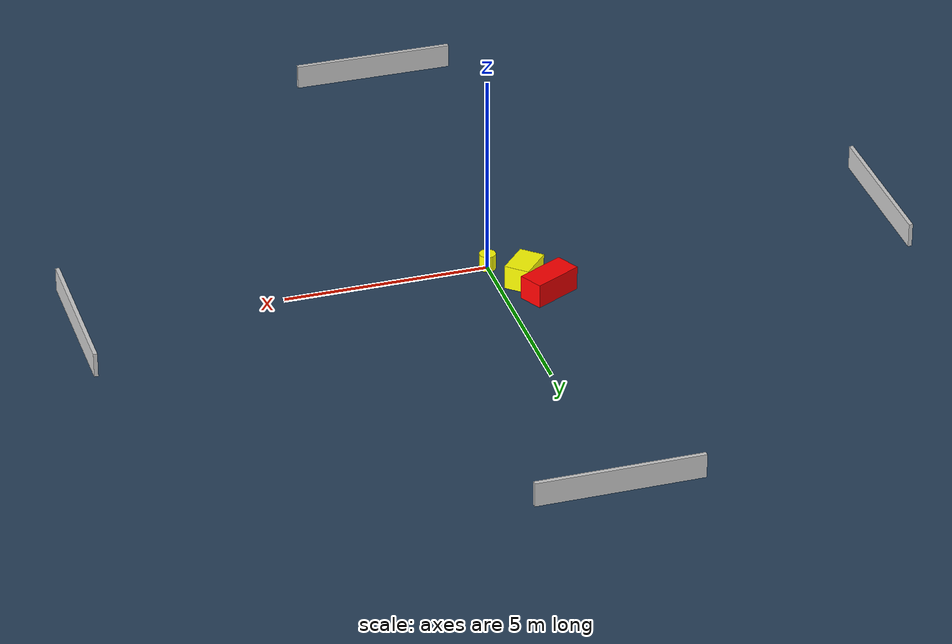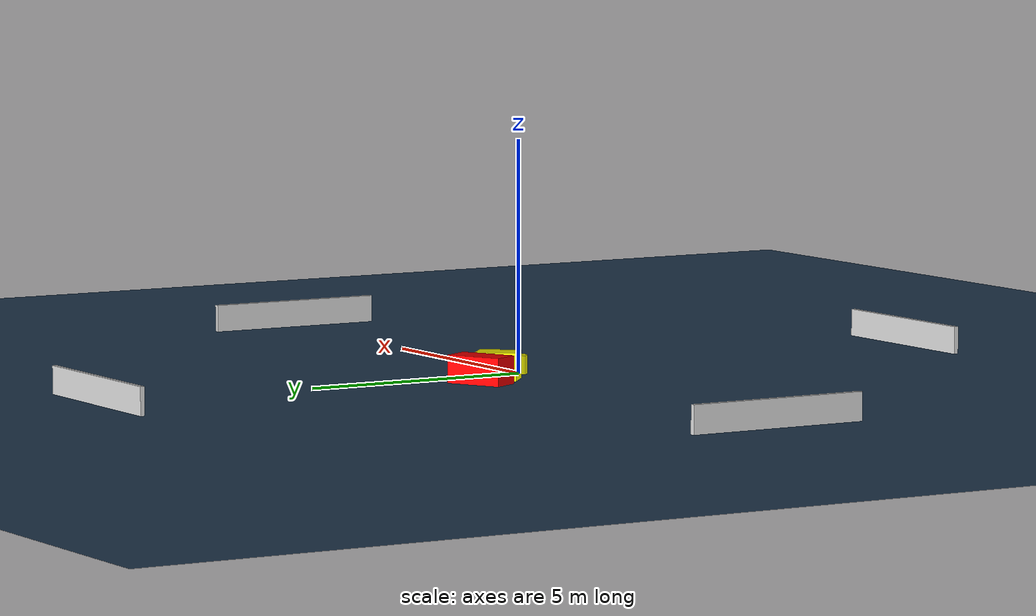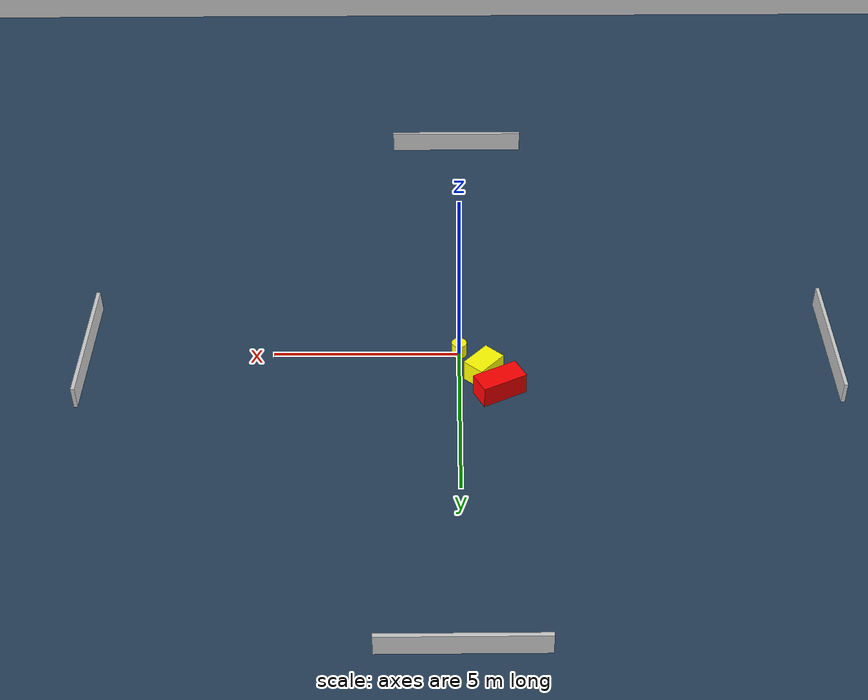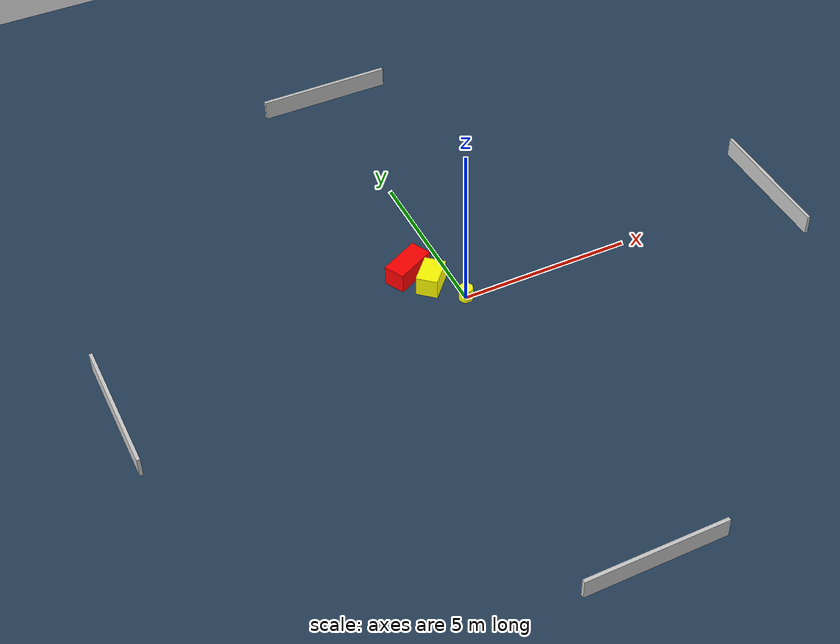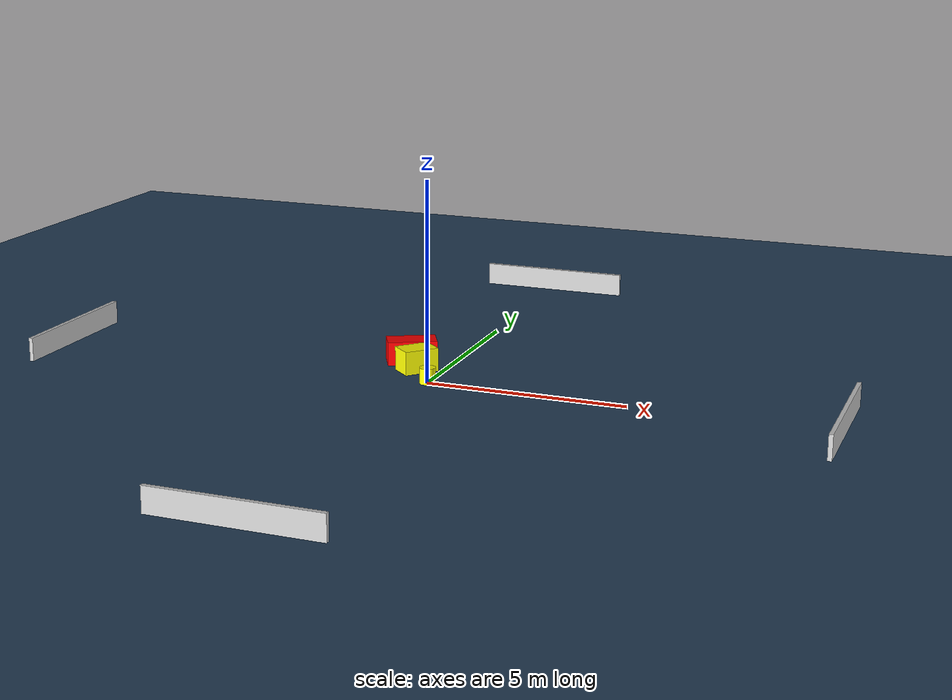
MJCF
<?xml version="1.0" ?>
<mujoco model="generated_environment">
  <option timestep="0.01" integrator="RK4" cone="elliptic"/>
  <default>
    <geom density="1"/>
  </default>
  <asset>
    <texture builtin="gradient" height="3072" name="skybox" rgb1="0.3 0.5 0.7" rgb2="0 0 0" type="skybox" width="512"/>
    <texture builtin="checker" height="300" name="groundplane" rgb1="0.2 0.3 0.4" rgb2="0.1 0.2 0.3" type="2d" width="300"/>
    <material name="groundplane" reflectance="0.2" texrepeat="5 5" texture="groundplane"/>
  </asset>
  <worldbody>
    <light dir="0 0 -1" directional="true" pos="0 0 1.5"/>
    <geom condim="3" friction="0.5 0.005 0.001" material="groundplane" name="floor" pos="0 0 0" size="0 0 0.05" type="plane"/>
    <body name="walls">
      <geom name="wall_1" condim="4" pos="-10.0 0.0 0.3" rgba="0.800000011920929 0.800000011920929 0.800000011920929 1.0" size="0.05 2.0 0.3" type="box"/>
      <geom name="wall_2" condim="4" pos="10.0 0.0 0.3" rgba="0.800000011920929 0.800000011920929 0.800000011920929 1.0" size="0.05 2.0 0.3" type="box"/>
      <geom name="wall_3" condim="4" pos="0.0 -10.0 0.3" rgba="0.800000011920929 0.800000011920929 0.800000011920929 1.0" size="2.0 0.05 0.3" type="box"/>
      <geom name="wall_4" condim="4" pos="0.0 10.0 0.3" rgba="0.800000011920929 0.800000011920929 0.800000011920929 1.0" size="2.0 0.05 0.3" type="box"/>
    </body>
    <body name="robot">
      <joint name="joint_x" type="slide" pos="0 0 0" axis="1 0 0"/>
      <joint name="joint_y" type="slide" pos="0 0 0" axis="0 1 0"/>
      <geom name="robot" type="cylinder" pos="0.0 0.0 0.2" size="0.2 0.2 0.0" mass="5.0" friction="1.0 0.005 0.0001" condim="4" rgba="1.0 1.0 0.0 1.0"/>
    </body>
    <body name="obstacle_1_movable">
      <geom name="obstacle_1_movable" condim="4" pos="-0.641004140171042 0.8839120919659207 0.3" euler="0 0 48.145120453596" friction="0.0 0.005 0.001" rgba="1.0 1.0 0.0 1.0" size="0.44454763687907506 0.30923948682391894 0.3" type="box" mass="0.1"/>
      <joint type="free"/>
    </body>
    <body name="obstacle_2_static">
      <geom name="obstacle_2_static" condim="4" pos="-1.048454711051861 1.5448528986236216 0.3" euler="0 0 117.30781106724504" friction="0.0 0.005 0.001" rgba="1.0 0.0 0.0 1.0" size="0.3111490941634485 0.6250109913525592 0.3" type="box"/>
    </body>
  </worldbody>
  <actuator>
    <motor name="actuator_x" joint="joint_x" gear="1" ctrlrange="-1 1"/>
    <motor name="actuator_y" joint="joint_y" gear="1" ctrlrange="-1 1"/>
  </actuator>
</mujoco>
